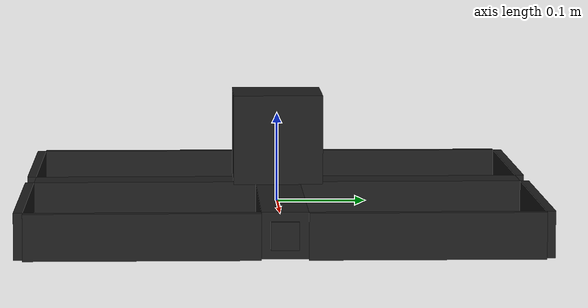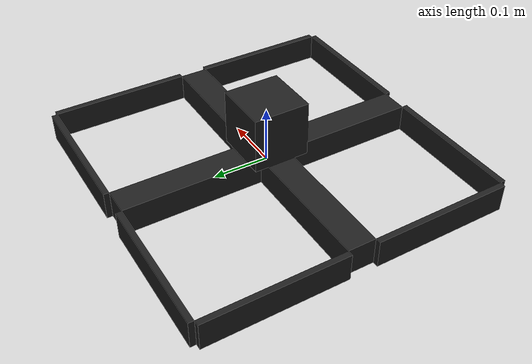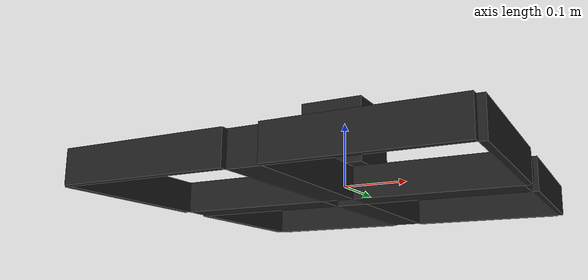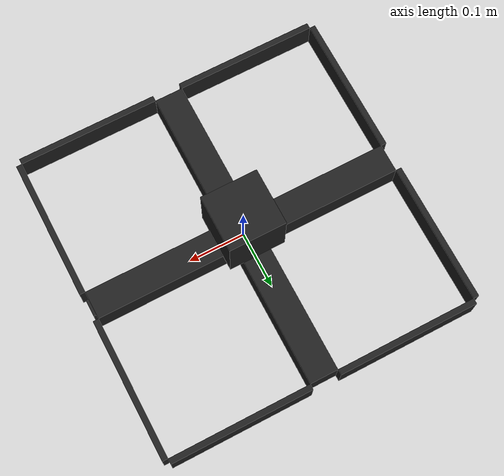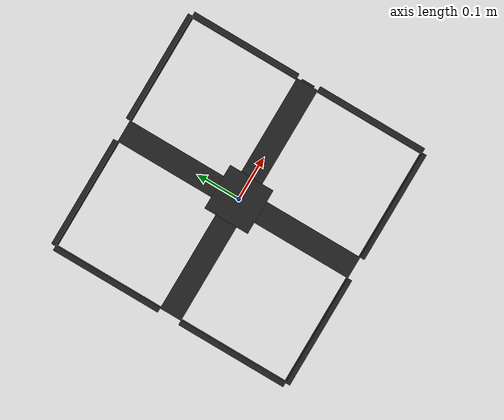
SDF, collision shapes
<?xml version='1.0'?>
<sdf version='1.4'>
  <model name='iarc_uav'>
    <link name='center'>
      <pose>0 0 0 0 -0 0</pose>
      <inertial>
        <pose>0.1375 0 0.0375 0 -0 0</pose>
        <mass>2e-05</mass>
        <inertia>
          <ixx>2.02813e-06</ixx>
          <ixy>0</ixy>
          <ixz>1.03125e-07</ixz>
          <iyy>2.40625e-06</iyy>
          <iyz>0</iyz>
          <izz>2.37812e-06</izz>
        </inertia>
      </inertial>
      <collision name='center_collision_arm1'>
        <pose>0 0.15 0 0 -0 0</pose>
        <geometry>
          <box>
            <size>0.05 0.25 0.05</size>
          </box>
        </geometry>
        <surface>
          <contact>
            <ode/>
          </contact>
          <friction>
            <ode/>
          </friction>
        </surface>
      </collision>
      <collision name='center_collision_arm2'>
        <pose>0.15 0 0 0 -0 1.5708</pose>
        <geometry>
          <box>
            <size>0.05 0.25 0.05</size>
          </box>
        </geometry>
        <surface>
          <contact>
            <ode/>
          </contact>
          <friction>
            <ode/>
          </friction>
        </surface>
      </collision>
      <collision name='center_collision_arm3'>
        <pose>0 -0.15 0 0 -0 0</pose>
        <geometry>
          <box>
            <size>0.05 0.25 0.05</size>
          </box>
        </geometry>
        <surface>
          <contact>
            <ode/>
          </contact>
          <friction>
            <ode/>
          </friction>
        </surface>
      </collision>
      <collision name='center_collision_arm4'>
        <pose>-0.15 0 0 0 -0 1.5708</pose>
        <geometry>
          <box>
            <size>0.05 0.25 0.05</size>
          </box>
        </geometry>
        <surface>
          <contact>
            <ode/>
          </contact>
          <friction>
            <ode/>
          </friction>
        </surface>
      </collision>
      <collision name='center_collision_camera_link1'>
        <pose>0.275 0 0 0 -0 0</pose>
        <geometry>
          <box>
            <size>0.01 0.03 0.03</size>
          </box>
        </geometry>
        <surface>
          <contact>
            <ode/>
          </contact>
          <friction>
            <ode/>
          </friction>
        </surface>
        <surface>
          <contact>
            <ode/>
          </contact>
          <friction>
            <ode/>
          </friction>
        </surface>
      </collision>
      <collision name='center_collision_hokuyo_link'>
        <pose>0 0 0.075 0 -0 0</pose>
        <geometry>
          <box>
            <size>0.1 0.1 0.1</size>
          </box>
        </geometry>
        <surface>
          <contact>
            <ode/>
          </contact>
          <friction>
            <ode/>
          </friction>
        </surface>
        <surface>
          <contact>
            <ode/>
          </contact>
          <friction>
            <ode/>
          </friction>
        </surface>
      </collision>
      <collision name='center_collision_side11'>
        <pose>0.28 0.15 0 0 -0 0</pose>
        <geometry>
          <box>
            <size>0.01 0.25 0.05</size>
          </box>
        </geometry>
        <surface>
          <contact>
            <ode/>
          </contact>
          <friction>
            <ode/>
          </friction>
        </surface>
      </collision>
      <collision name='center_collision_side12'>
        <pose>0.28 -0.15 0 0 -0 0</pose>
        <geometry>
          <box>
            <size>0.01 0.25 0.05</size>
          </box>
        </geometry>
        <surface>
          <contact>
            <ode/>
          </contact>
          <friction>
            <ode/>
          </friction>
        </surface>
      </collision>
      <collision name='center_collision_side21'>
        <pose>-0.28 0.15 0 0 -0 0</pose>
        <geometry>
          <box>
            <size>0.01 0.25 0.05</size>
          </box>
        </geometry>
        <surface>
          <contact>
            <ode/>
          </contact>
          <friction>
            <ode/>
          </friction>
        </surface>
      </collision>
      <collision name='center_collision_side22'>
        <pose>-0.28 -0.15 0 0 -0 0</pose>
        <geometry>
          <box>
            <size>0.01 0.25 0.05</size>
          </box>
        </geometry>
        <surface>
          <contact>
            <ode/>
          </contact>
          <friction>
            <ode/>
          </friction>
        </surface>
      </collision>
      <collision name='center_collision_side31'>
        <pose>0.15 -0.28 0 0 -0 1.5708</pose>
        <geometry>
          <box>
            <size>0.01 0.25 0.05</size>
          </box>
        </geometry>
        <surface>
          <contact>
            <ode/>
          </contact>
          <friction>
            <ode/>
          </friction>
        </surface>
      </collision>
      <collision name='center_collision_side32'>
        <pose>-0.15 -0.28 0 0 -0 1.5708</pose>
        <geometry>
          <box>
            <size>0.01 0.25 0.05</size>
          </box>
        </geometry>
        <surface>
          <contact>
            <ode/>
          </contact>
          <friction>
            <ode/>
          </friction>
        </surface>
      </collision>
      <collision name='center_collision_side41'>
        <pose>0.15 0.28 0 0 -0 1.5708</pose>
        <geometry>
          <box>
            <size>0.01 0.25 0.05</size>
          </box>
        </geometry>
        <surface>
          <contact>
            <ode/>
          </contact>
          <friction>
            <ode/>
          </friction>
        </surface>
      </collision>
      <collision name='center_collision_side42'>
        <pose>-0.15 0.28 0 0 -0 1.5708</pose>
        <geometry>
          <box>
            <size>0.01 0.25 0.05</size>
          </box>
        </geometry>
        <surface>
          <contact>
            <ode/>
          </contact>
          <friction>
            <ode/>
          </friction>
        </surface>
      </collision>
      <visual name='center_visual'>
        <pose>0 0 0 0 -0 0</pose>
        <geometry>
          <box>
            <size>0.05 0.05 0.05</size>
          </box>
        </geometry>
        <material>
          <script>
            <name>Gazebo/Black</name>
            <uri>__default__</uri>
          </script>
        </material>
      </visual>
      <visual name='center_visual_arm1'>
        <pose>0 0.15 0 0 -0 0</pose>
        <geometry>
          <box>
            <size>0.05 0.25 0.05</size>
          </box>
        </geometry>
      </visual>
      <visual name='center_visual_arm2'>
        <pose>0.15 0 0 0 -0 1.5708</pose>
        <geometry>
          <box>
            <size>0.05 0.25 0.05</size>
          </box>
        </geometry>
      </visual>
      <visual name='center_visual_arm3'>
        <pose>0 -0.15 0 0 -0 0</pose>
        <geometry>
          <box>
            <size>0.05 0.25 0.05</size>
          </box>
        </geometry>
      </visual>
      <visual name='center_visual_arm4'>
        <pose>-0.15 0 0 0 -0 1.5708</pose>
        <geometry>
          <box>
            <size>0.05 0.25 0.05</size>
          </box>
        </geometry>
      </visual>
      <visual name='center_visual_blade1'>
        <pose>0.15 0.15 0 0 -0 0</pose>
        <geometry>
          <cylinder>
            <length>0.01</length>
            <radius>0.1</radius>
          </cylinder>
        </geometry>
      </visual>
      <visual name='center_visual_blade2'>
        <pose>-0.15 0.15 0 0 -0 0</pose>
        <geometry>
          <cylinder>
            <length>0.01</length>
            <radius>0.1</radius>
          </cylinder>
        </geometry>
      </visual>
      <visual name='center_visual_blade3'>
        <pose>-0.15 -0.15 0 0 -0 0</pose>
        <geometry>
          <cylinder>
            <length>0.01</length>
            <radius>0.1</radius>
          </cylinder>
        </geometry>
      </visual>
      <visual name='center_visual_blade4'>
        <pose>0.15 -0.15 0 0 -0 0</pose>
        <geometry>
          <cylinder>
            <length>0.01</length>
            <radius>0.1</radius>
          </cylinder>
        </geometry>
      </visual>
      <visual name='center_visual_camera_link1'>
        <pose>0.275 0 0 0 -0 0</pose>
        <geometry>
          <box>
            <size>0.01 0.03 0.03</size>
          </box>
        </geometry>
      </visual>
      <visual name='center_visual_hokuyo_link'>
        <pose>0 0 0.075 0 -0 0</pose>
        <geometry>
          <mesh>
            <scale>1 1 1</scale>
            <uri>model://iarc_world/uav_description/meshes/hokuyo.dae</uri>
          </mesh>
        </geometry>
      </visual>
      <visual name='center_visual_side11'>
        <pose>0.28 0.15 0 0 -0 0</pose>
        <geometry>
          <box>
            <size>0.01 0.25 0.05</size>
          </box>
        </geometry>
      </visual>
      <visual name='center_visual_side12'>
        <pose>0.28 -0.15 0 0 -0 0</pose>
        <geometry>
          <box>
            <size>0.01 0.25 0.05</size>
          </box>
        </geometry>
      </visual>
      <visual name='center_visual_side21'>
        <pose>-0.28 0.15 0 0 -0 0</pose>
        <geometry>
          <box>
            <size>0.01 0.25 0.05</size>
          </box>
        </geometry>
      </visual>
      <visual name='center_visual_side22'>
        <pose>-0.28 -0.15 0 0 -0 0</pose>
        <geometry>
          <box>
            <size>0.01 0.25 0.05</size>
          </box>
        </geometry>
      </visual>
      <visual name='center_visual_side31'>
        <pose>0.15 -0.28 0 0 -0 1.5708</pose>
        <geometry>
          <box>
            <size>0.01 0.25 0.05</size>
          </box>
        </geometry>
      </visual>
      <visual name='center_visual_side32'>
        <pose>-0.15 -0.28 0 0 -0 1.5708</pose>
        <geometry>
          <box>
            <size>0.01 0.25 0.05</size>
          </box>
        </geometry>
      </visual>
      <visual name='center_visual_side41'>
        <pose>0.15 0.28 0 0 -0 1.5708</pose>
        <geometry>
          <box>
            <size>0.01 0.25 0.05</size>
          </box>
        </geometry>
      </visual>
      <visual name='center_visual_side42'>
        <pose>-0.15 0.28 0 0 -0 1.5708</pose>
        <geometry>
          <box>
            <size>0.01 0.25 0.05</size>
          </box>
        </geometry>
      </visual>
      <velocity_decay>
        <linear>0</linear>
        <angular>0</angular>
      </velocity_decay>
      <velocity_decay>
        <linear>0</linear>
        <angular>0</angular>
      </velocity_decay>
      <sensor name='camera1' type='camera'>
        <update_rate>30</update_rate>
        <camera name='head'>
          <horizontal_fov>1.39626</horizontal_fov>
          <image>
            <width>240</width>
            <height>320</height>
            <format>R8G8B8</format>
          </image>
          <clip>
            <near>0.02</near>
            <far>30</far>
          </clip>
          <noise>
            <type>gaussian</type>
            <mean>0</mean>
            <stddev>0.007</stddev>
          </noise>
        </camera>
        <plugin name='camera_controller' filename='libgazebo_ros_camera.so'>
          <alwaysOn>true</alwaysOn>
          <updateRate>0.0</updateRate>
          <cameraName>iarc_uav/camera1</cameraName>
          <imageTopicName>image_raw</imageTopicName>
          <cameraInfoTopicName>camera_info</cameraInfoTopicName>
          <frameName>camera_link1</frameName>
          <hackBaseline>0.07</hackBaseline>
          <distortionK1>0.0</distortionK1>
          <distortionK2>0.0</distortionK2>
          <distortionK3>0.0</distortionK3>
          <distortionT1>0.0</distortionT1>
          <distortionT2>0.0</distortionT2>
        </plugin>
        <pose>0.275 0 0 0 -0 0</pose>
      </sensor>
      <gravity>1</gravity>
      <velocity_decay>
        <linear>0</linear>
        <angular>0</angular>
      </velocity_decay>
      <self_collide>0</self_collide>
      <sensor name='head_hokuyo_sensor' type='gpu_ray'>
        <visualize>1</visualize>
        <update_rate>40</update_rate>
        <ray>
          <scan>
            <horizontal>
              <samples>720</samples>
              <resolution>1</resolution>
              <min_angle>-2.0944</min_angle>
              <max_angle>2.0944</max_angle>
            </horizontal>
          </scan>
          <range>
            <min>0.03</min>
            <max>3</max>
            <resolution>0.005</resolution>
          </range>
          <noise>
            <type>gaussian</type>
            <mean>0</mean>
            <stddev>0.01</stddev>
          </noise>
        </ray>
        <plugin name='gazebo_ros_head_hokuyo_controller' filename='libgazebo_ros_gpu_laser.so'>
          <topicName>/iarc_uav/laser/scan</topicName>
          <frameName>hokuyo_link</frameName>
        </plugin>
        <pose>0 0 0.075 0 -0 0</pose>
      </sensor>
    </link>
    <joint name='fixed' type='revolute'>
      <child>center</child>
      <parent>world</parent>
      <axis>
        <limit>
          <lower>0</lower>
          <upper>0</upper>
        </limit>
        <dynamics>
          <damping>0</damping>
        </dynamics>
        <xyz>0 0 1</xyz>
      </axis>
    </joint>
  </model>
</sdf>
